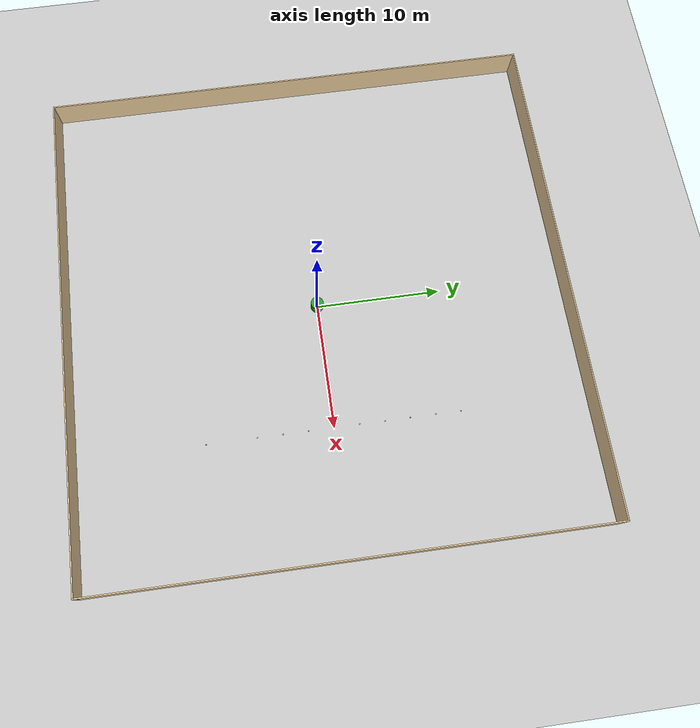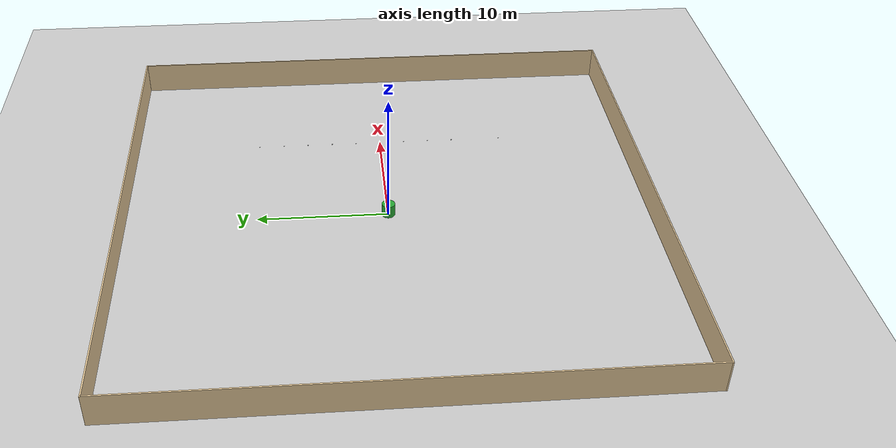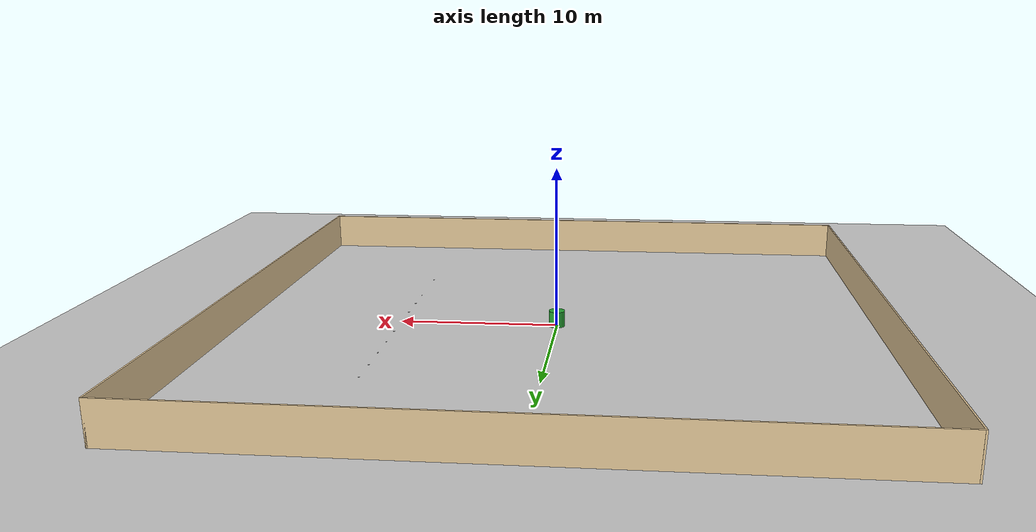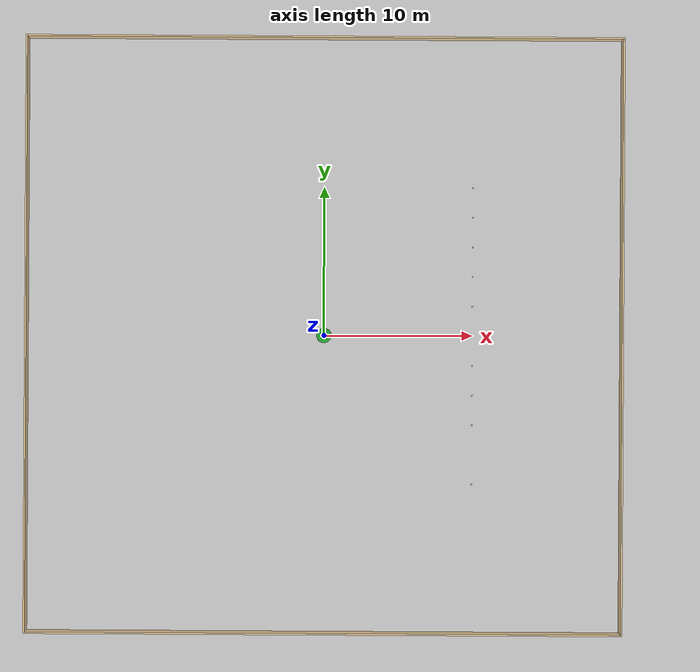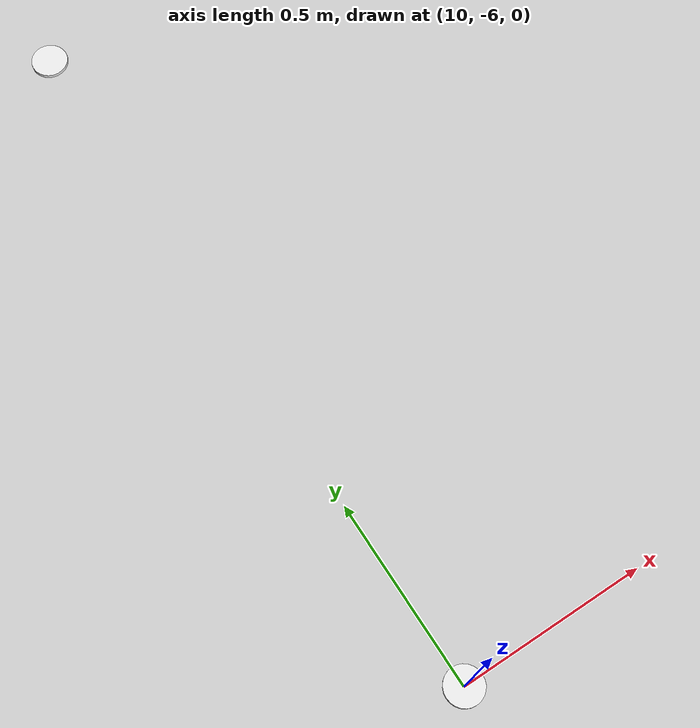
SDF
<?xml version="1.0" ?>
<sdf version="1.4">
  <world name="default">
    <!-- A global light source -->
    <include>
      <uri>model://sun</uri>
    </include>
    <!-- A ground plane -->
    <include>
      <uri>model://ground_plane</uri>
    </include>
    <!-- Own physics settings to speed up simulation -->
    <physics type='ode'>
      <max_step_size>0.01</max_step_size>
      <gravity>0 0 -9.8</gravity>
    </physics>

          <model name='dynamic_addWall'>
            <pose frame=''>0 0.004999 0 0 -0 0</pose>
            <link name='Wall_0'>
              <collision name='Wall_0_Collision'>
                <geometry>
                  <box>
                    <size>40.11 0.1 2.5</size>
                  </box>
                </geometry>
                <pose frame=''>0 0 1.25 0 -0 0</pose>
              </collision>
              <visual name='Wall_0_Visual'>
                <pose frame=''>0 0 1.25 0 -0 0</pose>
                <geometry>
                  <box>
                    <size>40.11 0.1 2.5</size>
                  </box>
                </geometry>
                <material>
                  <script>
                    <uri>file://media/materials/scripts/gazebo.material</uri>
                    <name>Gazebo/Grey</name>
                  </script>
                  <ambient>0.921569 0.807843 0.615686 1</ambient>
                </material>
                <meta>
                  <layer>0</layer>
                </meta>
              </visual>
              <pose frame=''>-20 1e-06 0 0 -0 1.5708</pose>
            </link>
            <link name='Wall_6'>
              <collision name='Wall_6_Collision'>
                <geometry>
                  <box>
                    <size>40.1 0.1 2.5</size>
                  </box>
                </geometry>
                <pose frame=''>0 0 1.25 0 -0 0</pose>
              </collision>
              <visual name='Wall_6_Visual'>
                <pose frame=''>0 0 1.25 0 -0 0</pose>
                <geometry>
                  <box>
                    <size>40.1 0.1 2.5</size>
                  </box>
                </geometry>
                <material>
                  <script>
                    <uri>file://media/materials/scripts/gazebo.material</uri>
                    <name>Gazebo/Grey</name>
                  </script>
                  <ambient>0.921569 0.807843 0.615686 1</ambient>
                </material>
                <meta>
                  <layer>0</layer>
                </meta>
              </visual>
              <pose frame=''>0 19.995 0 0 -0 0</pose>
            </link>
            <link name='Wall_8'>
              <collision name='Wall_8_Collision'>
                <geometry>
                  <box>
                    <size>40.1 0.1 2.5</size>
                  </box>
                </geometry>
                <pose frame=''>0 0 1.25 0 -0 0</pose>
              </collision>
              <visual name='Wall_8_Visual'>
                <pose frame=''>0 0 1.25 0 -0 0</pose>
                <geometry>
                  <box>
                    <size>40.1 0.1 2.5</size>
                  </box>
                </geometry>
                <material>
                  <script>
                    <uri>file://media/materials/scripts/gazebo.material</uri>
                    <name>Gazebo/Grey</name>
                  </script>
                  <ambient>0.921569 0.807843 0.615686 1</ambient>
                </material>
                <meta>
                  <layer>0</layer>
                </meta>
              </visual>
              <pose frame=''>20 -0.004999 0 0 0 -1.5708</pose>
            </link>
            <link name='Wall_9'>
              <collision name='Wall_9_Collision'>
                <geometry>
                  <box>
                    <size>40.1 0.1 2.5</size>
                  </box>
                </geometry>
                <pose frame=''>0 0 1.25 0 -0 0</pose>
              </collision>
              <visual name='Wall_9_Visual'>
                <pose frame=''>0 0 1.25 0 -0 0</pose>
                <geometry>
                  <box>
                    <size>40.1 0.1 2.5</size>
                  </box>
                </geometry>
                <material>
                  <script>
                    <uri>file://media/materials/scripts/gazebo.material</uri>
                    <name>Gazebo/Grey</name>
                  </script>
                  <ambient>0.921569 0.807843 0.615686 1</ambient>
                </material>
                <meta>
                  <layer>0</layer>
                </meta>
              </visual>
              <pose frame=''>0 -20.005 0 0 -0 3.14159</pose>
            </link>
            <static>1</static>
          </model>

		<model name='obs_point_goal0'>
			<pose>10 10 0.005 0 0 0</pose>
			<link name='link'>
				<inertial>
					<mass>1</mass>
				</inertial>
				<visual name='visual'>
					<geometry>
						<cylinder>
								<radius>0.05</radius>
								<length>0.01</length>
						</cylinder>
					</geometry>
					<material>
						<script>
							<uri>file://media/materials/scripts/gazebo.material</uri>
							<name>Gazebo/White</name>
						</script>
					</material>
				</visual>
				<velocity_decay>
					<linear>0</linear>
					<angular>0</angular>
				</velocity_decay>
				<self_collide>0</self_collide>
				<kinematic>0</kinematic>
				<gravity>0</gravity>
			</link>
		</model>

		<model name='obs_point_goal1'>
			<pose>10 8 0.005 0 0 0</pose>
			<link name='link'>
				<inertial>
					<mass>1</mass>
				</inertial>
				<visual name='visual'>
					<geometry>
						<cylinder>
								<radius>0.05</radius>
								<length>0.01</length>
						</cylinder>
					</geometry>
					<material>
						<script>
							<uri>file://media/materials/scripts/gazebo.material</uri>
							<name>Gazebo/White</name>
						</script>
					</material>
				</visual>
				<velocity_decay>
					<linear>0</linear>
					<angular>0</angular>
				</velocity_decay>
				<self_collide>0</self_collide>
				<kinematic>0</kinematic>
				<gravity>0</gravity>
			</link>
		</model>

		<model name='obs_point_goal2'>
			<pose>10 6 0.005 0 0 0</pose>
			<link name='link'>
				<inertial>
					<mass>1</mass>
				</inertial>
				<visual name='visual'>
					<geometry>
						<cylinder>
								<radius>0.05</radius>
								<length>0.01</length>
						</cylinder>
					</geometry>
					<material>
						<script>
							<uri>file://media/materials/scripts/gazebo.material</uri>
							<name>Gazebo/White</name>
						</script>
					</material>
				</visual>
				<velocity_decay>
					<linear>0</linear>
					<angular>0</angular>
				</velocity_decay>
				<self_collide>0</self_collide>
				<kinematic>0</kinematic>
				<gravity>0</gravity>
			</link>
		</model>

		<model name='obs_point_goal3'>
			<pose>10 4 0.005 0 0 0</pose>
			<link name='link'>
				<inertial>
					<mass>1</mass>
				</inertial>
				<visual name='visual'>
					<geometry>
						<cylinder>
								<radius>0.05</radius>
								<length>0.01</length>
						</cylinder>
					</geometry>
					<material>
						<script>
							<uri>file://media/materials/scripts/gazebo.material</uri>
							<name>Gazebo/White</name>
						</script>
					</material>
				</visual>
				<velocity_decay>
					<linear>0</linear>
					<angular>0</angular>
				</velocity_decay>
				<self_collide>0</self_collide>
				<kinematic>0</kinematic>
				<gravity>0</gravity>
			</link>
		</model>

		<model name='obs_point_goal4'>
			<pose>10 2 0.005 0 0 0</pose>
			<link name='link'>
				<inertial>
					<mass>1</mass>
				</inertial>
				<visual name='visual'>
					<geometry>
						<cylinder>
								<radius>0.05</radius>
								<length>0.01</length>
						</cylinder>
					</geometry>
					<material>
						<script>
							<uri>file://media/materials/scripts/gazebo.material</uri>
							<name>Gazebo/White</name>
						</script>
					</material>
				</visual>
				<velocity_decay>
					<linear>0</linear>
					<angular>0</angular>
				</velocity_decay>
				<self_collide>0</self_collide>
				<kinematic>0</kinematic>
				<gravity>0</gravity>
			</link>
		</model>

		<model name='obs_point_goal5'>
			<pose>10 0 0.005 0 0 0</pose>
			<link name='link'>
				<inertial>
					<mass>1</mass>
				</inertial>
				<visual name='visual'>
					<geometry>
						<cylinder>
								<radius>0.05</radius>
								<length>0.01</length>
						</cylinder>
					</geometry>
					<material>
						<script>
							<uri>file://media/materials/scripts/gazebo.material</uri>
							<name>Gazebo/White</name>
						</script>
					</material>
				</visual>
				<velocity_decay>
					<linear>0</linear>
					<angular>0</angular>
				</velocity_decay>
				<self_collide>0</self_collide>
				<kinematic>0</kinematic>
				<gravity>0</gravity>
			</link>
		</model>

		<model name='obs_point_goal6'>
			<pose>10 -2 0.005 0 0 0</pose>
			<link name='link'>
				<inertial>
					<mass>1</mass>
				</inertial>
				<visual name='visual'>
					<geometry>
						<cylinder>
								<radius>0.05</radius>
								<length>0.01</length>
						</cylinder>
					</geometry>
					<material>
						<script>
							<uri>file://media/materials/scripts/gazebo.material</uri>
							<name>Gazebo/White</name>
						</script>
					</material>
				</visual>
				<velocity_decay>
					<linear>0</linear>
					<angular>0</angular>
				</velocity_decay>
				<self_collide>0</self_collide>
				<kinematic>0</kinematic>
				<gravity>0</gravity>
			</link>
		</model>

		<model name='obs_point_goal7'>
			<pose>10 -4 0.005 0 0 0</pose>
			<link name='link'>
				<inertial>
					<mass>1</mass>
				</inertial>
				<visual name='visual'>
					<geometry>
						<cylinder>
								<radius>0.05</radius>
								<length>0.01</length>
						</cylinder>
					</geometry>
					<material>
						<script>
							<uri>file://media/materials/scripts/gazebo.material</uri>
							<name>Gazebo/White</name>
						</script>
					</material>
				</visual>
				<velocity_decay>
					<linear>0</linear>
					<angular>0</angular>
				</velocity_decay>
				<self_collide>0</self_collide>
				<kinematic>0</kinematic>
				<gravity>0</gravity>
			</link>
		</model>

		<model name='obs_point_goal8'>
			<pose>10 -6 0.005 0 0 0</pose>
			<link name='link'>
				<inertial>
					<mass>1</mass>
				</inertial>
				<visual name='visual'>
					<geometry>
						<cylinder>
								<radius>0.05</radius>
								<length>0.01</length>
						</cylinder>
					</geometry>
					<material>
						<script>
							<uri>file://media/materials/scripts/gazebo.material</uri>
							<name>Gazebo/White</name>
						</script>
					</material>
				</visual>
				<velocity_decay>
					<linear>0</linear>
					<angular>0</angular>
				</velocity_decay>
				<self_collide>0</self_collide>
				<kinematic>0</kinematic>
				<gravity>0</gravity>
			</link>
		</model>

		<model name='obs_point_goal9'>
			<pose>10 -10 0.005 0 0 0</pose>
			<link name='link'>
				<inertial>
					<mass>1</mass>
				</inertial>
				<visual name='visual'>
					<geometry>
						<cylinder>
								<radius>0.05</radius>
								<length>0.01</length>
						</cylinder>
					</geometry>
					<material>
						<script>
							<uri>file://media/materials/scripts/gazebo.material</uri>
							<name>Gazebo/White</name>
						</script>
					</material>
				</visual>
				<velocity_decay>
					<linear>0</linear>
					<angular>0</angular>
				</velocity_decay>
				<self_collide>0</self_collide>
				<kinematic>0</kinematic>
				<gravity>0</gravity>
			</link>
		</model>

		<model name='point_goal'>
			<pose>0 0 0.5 0 0 0</pose>
			<link name='link'>
				<inertial>
					<mass>1</mass>
				</inertial>
				<visual name='visual'>
					<geometry>
						<cylinder>
								<radius>0.5</radius>
								<length>1.0</length>
						</cylinder>
					</geometry>
					<material>
						<script>
							<uri>file://media/materials/scripts/gazebo.material</uri>
							<name>Gazebo/Green</name>
						</script>
					</material>
				</visual>
				<velocity_decay>
					<linear>0</linear>
					<angular>0</angular>
				</velocity_decay>
				<self_collide>0</self_collide>
				<kinematic>0</kinematic>
				<gravity>0</gravity>
			</link>
		</model>
  </world>
</sdf>
